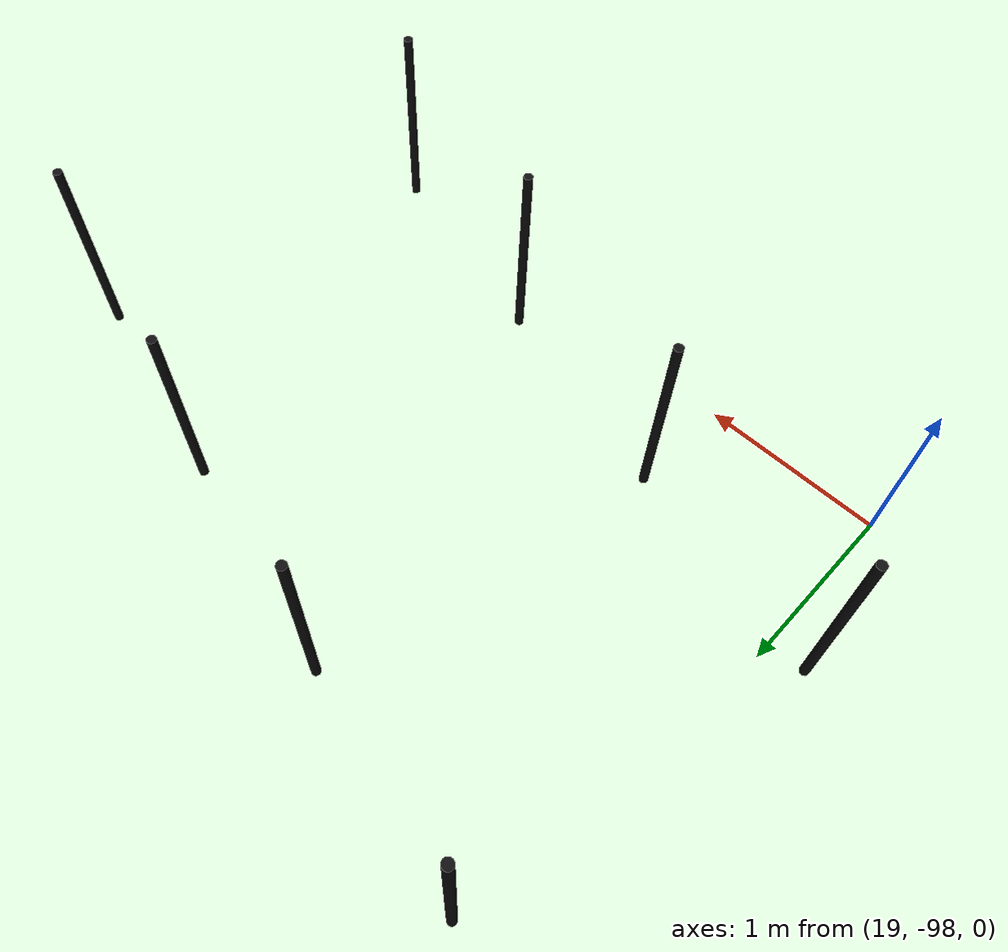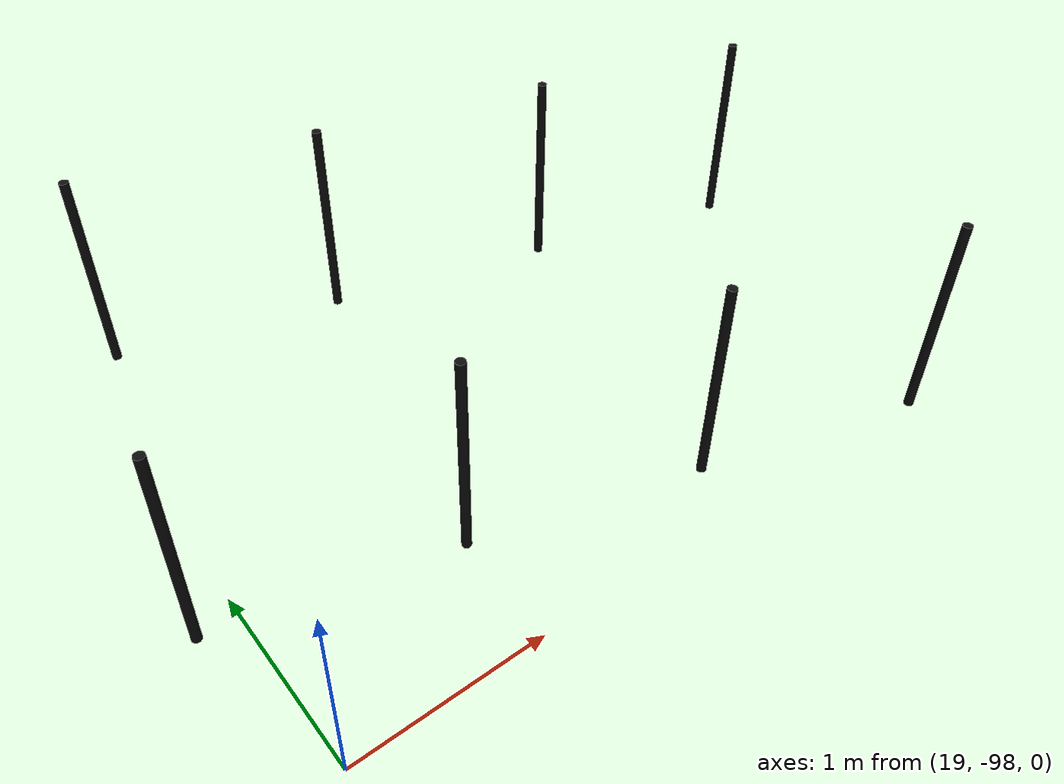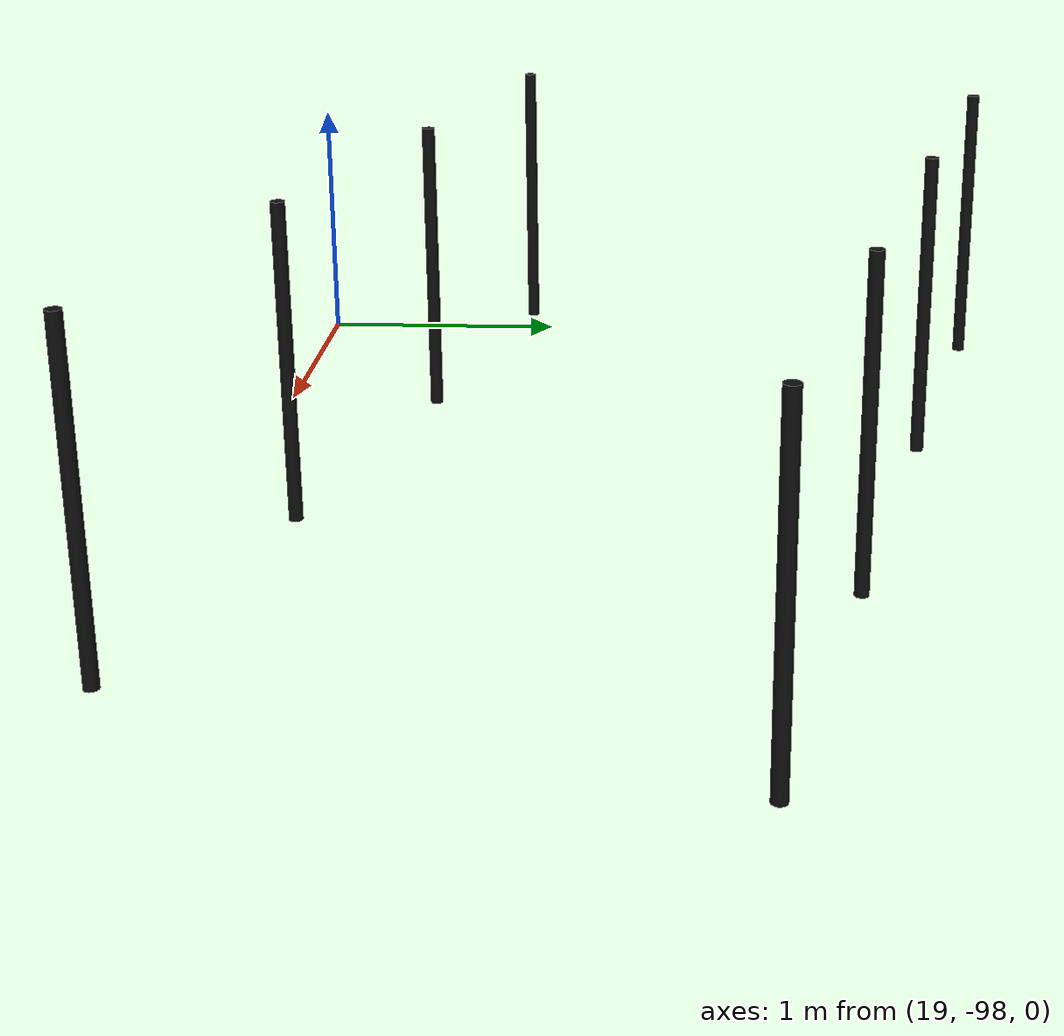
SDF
<sdf version="1.4">
 <world name="default">
  <include><uri>model://sun</uri></include>
  <model name="pole_1042">
   <static>1</static>
   <pose>18.800 -97.100 0.575 0.0 0.0 0.0</pose>
   <link name="link">
    <collision name="collision">
     <geometry><cylinder><length>1.15</length><radius>0.025</radius></cylinder></geometry>
    </collision>
    <visual name="visual">
     <geometry><cylinder><length>1.15</length><radius>0.025</radius></cylinder></geometry>
     <material>
      <script><uri>file://media/materials/scripts/gazebo.material</uri><name>Gazebo/Chrome</name></script>
      <shader type="vertex"><normal_map>__default__</normal_map></shader>
      <emissive>0.1 0.1 0.1 1</emissive>
      <specular>0.01 0.01 0.01 1</specular>
      <ambient>0.5 0.5 0.5 1</ambient>
      <diffuse>0.05 0.05 0.05 1</diffuse>
     </material>
    </visual>
   </link>
  </model>
  <model name="pole_1043">
   <static>1</static>
   <pose>19.244 -95.150 0.575 0.0 0.0 0.0</pose>
   <link name="link">
    <collision name="collision">
     <geometry><cylinder><length>1.15</length><radius>0.025</radius></cylinder></geometry>
    </collision>
    <visual name="visual">
     <geometry><cylinder><length>1.15</length><radius>0.025</radius></cylinder></geometry>
     <material>
      <script><uri>file://media/materials/scripts/gazebo.material</uri><name>Gazebo/Chrome</name></script>
      <shader type="vertex"><normal_map>__default__</normal_map></shader>
      <emissive>0.1 0.1 0.1 1</emissive>
      <specular>0.01 0.01 0.01 1</specular>
      <ambient>0.5 0.5 0.5 1</ambient>
      <diffuse>0.05 0.05 0.05 1</diffuse>
     </material>
    </visual>
   </link>
  </model>
  <model name="pole_1091">
   <static>1</static>
   <pose>20.022 -97.396 0.575 0.0 0.0 0.0</pose>
   <link name="link">
    <collision name="collision">
     <geometry><cylinder><length>1.15</length><radius>0.025</radius></cylinder></geometry>
    </collision>
    <visual name="visual">
     <geometry><cylinder><length>1.15</length><radius>0.025</radius></cylinder></geometry>
     <material>
      <script><uri>file://media/materials/scripts/gazebo.material</uri><name>Gazebo/Chrome</name></script>
      <shader type="vertex"><normal_map>__default__</normal_map></shader>
      <emissive>0.1 0.1 0.1 1</emissive>
      <specular>0.01 0.01 0.01 1</specular>
      <ambient>0.5 0.5 0.5 1</ambient>
      <diffuse>0.05 0.05 0.05 1</diffuse>
     </material>
    </visual>
   </link>
  </model>
  <model name="pole_1092">
   <static>1</static>
   <pose>20.475 -95.475 0.575 0.0 0.0 0.0</pose>
   <link name="link">
    <collision name="collision">
     <geometry><cylinder><length>1.15</length><radius>0.025</radius></cylinder></geometry>
    </collision>
    <visual name="visual">
     <geometry><cylinder><length>1.15</length><radius>0.025</radius></cylinder></geometry>
     <material>
      <script><uri>file://media/materials/scripts/gazebo.material</uri><name>Gazebo/Chrome</name></script>
      <shader type="vertex"><normal_map>__default__</normal_map></shader>
      <emissive>0.1 0.1 0.1 1</emissive>
      <specular>0.01 0.01 0.01 1</specular>
      <ambient>0.5 0.5 0.5 1</ambient>
      <diffuse>0.05 0.05 0.05 1</diffuse>
     </material>
    </visual>
   </link>
  </model>
  <model name="pole_1140">
   <static>1</static>
   <pose>21.228 -97.728 0.575 0.0 0.0 0.0</pose>
   <link name="link">
    <collision name="collision">
     <geometry><cylinder><length>1.15</length><radius>0.025</radius></cylinder></geometry>
    </collision>
    <visual name="visual">
     <geometry><cylinder><length>1.15</length><radius>0.025</radius></cylinder></geometry>
     <material>
      <script><uri>file://media/materials/scripts/gazebo.material</uri><name>Gazebo/Chrome</name></script>
      <shader type="vertex"><normal_map>__default__</normal_map></shader>
      <emissive>0.1 0.1 0.1 1</emissive>
      <specular>0.01 0.01 0.01 1</specular>
      <ambient>0.5 0.5 0.5 1</ambient>
      <diffuse>0.05 0.05 0.05 1</diffuse>
     </material>
    </visual>
   </link>
  </model>
  <model name="pole_1141">
   <static>1</static>
   <pose>21.743 -95.793 0.575 0.0 0.0 0.0</pose>
   <link name="link">
    <collision name="collision">
     <geometry><cylinder><length>1.15</length><radius>0.025</radius></cylinder></geometry>
    </collision>
    <visual name="visual">
     <geometry><cylinder><length>1.15</length><radius>0.025</radius></cylinder></geometry>
     <material>
      <script><uri>file://media/materials/scripts/gazebo.material</uri><name>Gazebo/Chrome</name></script>
      <shader type="vertex"><normal_map>__default__</normal_map></shader>
      <emissive>0.1 0.1 0.1 1</emissive>
      <specular>0.01 0.01 0.01 1</specular>
      <ambient>0.5 0.5 0.5 1</ambient>
      <diffuse>0.05 0.05 0.05 1</diffuse>
     </material>
    </visual>
   </link>
  </model>
  <model name="pole_1189">
   <static>1</static>
   <pose>22.441 -98.067 0.575 0.0 0.0 0.0</pose>
   <link name="link">
    <collision name="collision">
     <geometry><cylinder><length>1.15</length><radius>0.025</radius></cylinder></geometry>
    </collision>
    <visual name="visual">
     <geometry><cylinder><length>1.15</length><radius>0.025</radius></cylinder></geometry>
     <material>
      <script><uri>file://media/materials/scripts/gazebo.material</uri><name>Gazebo/Chrome</name></script>
      <shader type="vertex"><normal_map>__default__</normal_map></shader>
      <emissive>0.1 0.1 0.1 1</emissive>
      <specular>0.01 0.01 0.01 1</specular>
      <ambient>0.5 0.5 0.5 1</ambient>
      <diffuse>0.05 0.05 0.05 1</diffuse>
     </material>
    </visual>
   </link>
  </model>
  <model name="pole_1190">
   <static>1</static>
   <pose>22.950 -96.106 0.575 0.0 0.0 0.0</pose>
   <link name="link">
    <collision name="collision">
     <geometry><cylinder><length>1.15</length><radius>0.025</radius></cylinder></geometry>
    </collision>
    <visual name="visual">
     <geometry><cylinder><length>1.15</length><radius>0.025</radius></cylinder></geometry>
     <material>
      <script><uri>file://media/materials/scripts/gazebo.material</uri><name>Gazebo/Chrome</name></script>
      <shader type="vertex"><normal_map>__default__</normal_map></shader>
      <emissive>0.1 0.1 0.1 1</emissive>
      <specular>0.01 0.01 0.01 1</specular>
      <ambient>0.5 0.5 0.5 1</ambient>
      <diffuse>0.05 0.05 0.05 1</diffuse>
     </material>
    </visual>
   </link>
  </model>
 </world>
</sdf>
